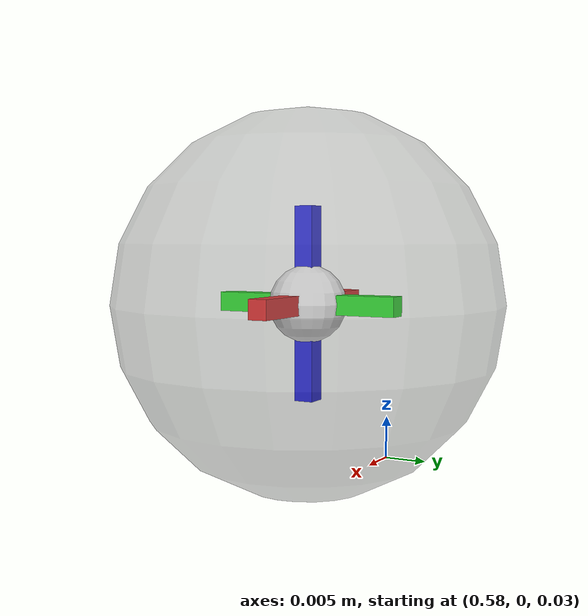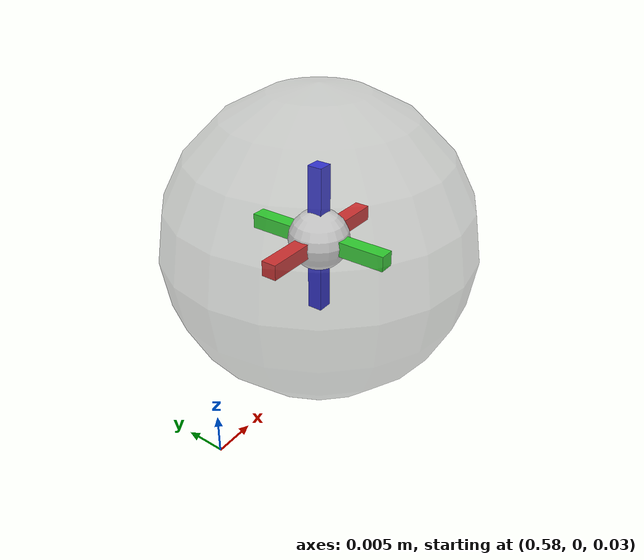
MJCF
<mujoco model="CondimTestSphere">
 <worldbody>
  <body name="CONDIM_SPHERE" pos="0.6 0.0 0.05" quat="1 0 0 0">
   <geom friction="1 0.005 0.0002" pos="0 0 0" rgba="0.5 0.5 0.5 0.4" size="0.02 0.02 0.02" type="sphere"/>

   <site pos="0 0 0" rgba="1 1 1 1" size="0.004 0.004 0.004" type="sphere"/>

   <site pos="0 0 0" rgba="1 0 0 1" size="0.01 0.001 0.001" type="box"/>
   <site pos="0 0 0" rgba="0 1 0 1" size="0.001 0.01 0.001" type="box"/>
   <site pos="0 0 0" rgba="0 0 1 1" size="0.001 0.001 0.01" type="box"/>
   <freejoint/>
  </body>

 </worldbody>
</mujoco>
